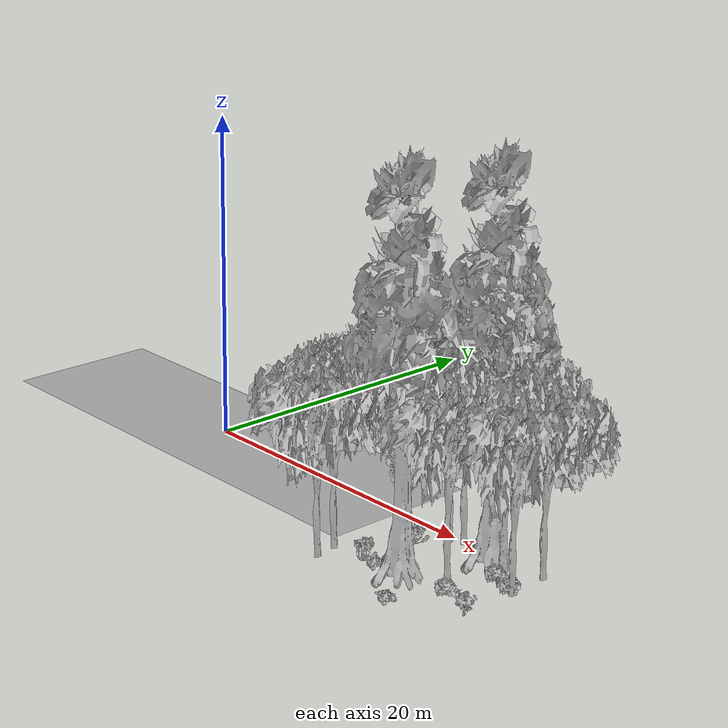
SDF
<sdf version="1.7">
 <world name="default">
  <model name="ground_plane">
   <static>1</static>
   <link name="link">
    <collision name="collision">
     <geometry><plane><normal>0 0 1</normal><size>100 100</size></plane></geometry>
     <surface><contact><ode><min_depth>0.01</min_depth><max_vel>0</max_vel></ode></contact></surface>
    </collision>
    <visual name="grass">
     <cast_shadows>0</cast_shadows>
     <geometry>
      <mesh>
       <scale>0.5814285714285714 0.18142857142857144 0.1</scale>
       <uri>file://grass_plane/meshes/grass_plane.dae</uri>
      </mesh>
     </geometry>
    </visual>
   </link>
  </model>
  <model name="Tree 87">
   <static>1</static>
   <pose>24.762154021888563 -1.2815338212791954 0 1.57079 -0 0</pose>
   <link name="link">
    <collision name="collision">
     <geometry><mesh><scale>3.5 5 3.5</scale><uri>model://tree_9/meshes/tree_9.obj</uri></mesh></geometry>
    </collision>
    <visual name="visual">
     <geometry><mesh><scale>3.5 5 3.5</scale><uri>model://tree_9/meshes/tree_9.obj</uri></mesh></geometry>
    </visual>
   </link>
  </model>
  <model name="Tree 126">
   <static>1</static>
   <pose>20.700435597103834 -0.1439220012419291 0 1.57079 -0 0</pose>
   <link name="link">
    <collision name="collision">
     <geometry><mesh><scale>3.5 5 3.5</scale><uri>model://tree_2/meshes/tree_2.obj</uri></mesh></geometry>
    </collision>
    <visual name="visual">
     <geometry><mesh><scale>3.5 5 3.5</scale><uri>model://tree_2/meshes/tree_2.obj</uri></mesh></geometry>
    </visual>
   </link>
  </model>
  <model name="Tree 139">
   <static>1</static>
   <pose>16.22907979295354 0.05030989968264343 0 1.57079 -0 0</pose>
   <link name="link">
    <collision name="collision">
     <geometry><mesh><scale>3.5 5 3.5</scale><uri>model://tree_9/meshes/tree_9.obj</uri></mesh></geometry>
    </collision>
    <visual name="visual">
     <geometry><mesh><scale>3.5 5 3.5</scale><uri>model://tree_9/meshes/tree_9.obj</uri></mesh></geometry>
    </visual>
   </link>
  </model>
  <model name="Tree 227">
   <static>1</static>
   <pose>17.304511364682412 -1.1993700250902233 0 1.57079 -0 0</pose>
   <link name="link">
    <collision name="collision">
     <geometry><mesh><scale>3.5 5 3.5</scale><uri>model://tree_2/meshes/tree_2.obj</uri></mesh></geometry>
    </collision>
    <visual name="visual">
     <geometry><mesh><scale>3.5 5 3.5</scale><uri>model://tree_2/meshes/tree_2.obj</uri></mesh></geometry>
    </visual>
   </link>
  </model>
  <model name="Tree 241">
   <static>1</static>
   <pose>16.709409075168722 -7.158673425214763 0 1.57079 -0 0</pose>
   <link name="link">
    <collision name="collision">
     <geometry><mesh><scale>3.5 5 3.5</scale><uri>model://tree_2/meshes/tree_2.obj</uri></mesh></geometry>
    </collision>
    <visual name="visual">
     <geometry><mesh><scale>3.5 5 3.5</scale><uri>model://tree_2/meshes/tree_2.obj</uri></mesh></geometry>
    </visual>
   </link>
  </model>
  <model name="Tree 267">
   <static>1</static>
   <pose>19.98978772129469 -0.5024682242582674 0 1.57079 -0 0</pose>
   <link name="link">
    <collision name="collision">
     <geometry><mesh><scale>3.5 5 3.5</scale><uri>model://tree_2/meshes/tree_2.obj</uri></mesh></geometry>
    </collision>
    <visual name="visual">
     <geometry><mesh><scale>3.5 5 3.5</scale><uri>model://tree_2/meshes/tree_2.obj</uri></mesh></geometry>
    </visual>
   </link>
  </model>
  <model name="Tree 270">
   <static>1</static>
   <pose>22.905177964467484 -3.6206345914285656 0 1.57079 -0 0</pose>
   <link name="link">
    <collision name="collision">
     <geometry><mesh><scale>3.5 5 3.5</scale><uri>model://tree_2/meshes/tree_2.obj</uri></mesh></geometry>
    </collision>
    <visual name="visual">
     <geometry><mesh><scale>3.5 5 3.5</scale><uri>model://tree_2/meshes/tree_2.obj</uri></mesh></geometry>
    </visual>
   </link>
  </model>
  <model name="Tree 283">
   <static>1</static>
   <pose>26.292993573531234 0.004703976021030343 0 1.57079 -0 0</pose>
   <link name="link">
    <collision name="collision">
     <geometry><mesh><scale>3.5 5 3.5</scale><uri>model://tree_2/meshes/tree_2.obj</uri></mesh></geometry>
    </collision>
    <visual name="visual">
     <geometry><mesh><scale>3.5 5 3.5</scale><uri>model://tree_2/meshes/tree_2.obj</uri></mesh></geometry>
    </visual>
   </link>
  </model>
  <model name="Tree 287">
   <static>1</static>
   <pose>20.353614105269273 -3.999209464108187 0 1.57079 -0 0</pose>
   <link name="link">
    <collision name="collision">
     <geometry><mesh><scale>3.5 5 3.5</scale><uri>model://tree_9/meshes/tree_9.obj</uri></mesh></geometry>
    </collision>
    <visual name="visual">
     <geometry><mesh><scale>3.5 5 3.5</scale><uri>model://tree_9/meshes/tree_9.obj</uri></mesh></geometry>
    </visual>
   </link>
  </model>
  <model name="Tree 326">
   <static>1</static>
   <pose>16.49464261642116 -5.78826860011635 0 1.57079 -0 0</pose>
   <link name="link">
    <collision name="collision">
     <geometry><mesh><scale>3.5 5 3.5</scale><uri>model://tree_2/meshes/tree_2.obj</uri></mesh></geometry>
    </collision>
    <visual name="visual">
     <geometry><mesh><scale>3.5 5 3.5</scale><uri>model://tree_2/meshes/tree_2.obj</uri></mesh></geometry>
    </visual>
   </link>
  </model>
  <model name="Tree 369">
   <static>1</static>
   <pose>26.49497232388832 -2.5422927113789626 0 1.57079 -0 0</pose>
   <link name="link">
    <collision name="collision">
     <geometry><mesh><scale>3.5 5 3.5</scale><uri>model://tree_2/meshes/tree_2.obj</uri></mesh></geometry>
    </collision>
    <visual name="visual">
     <geometry><mesh><scale>3.5 5 3.5</scale><uri>model://tree_2/meshes/tree_2.obj</uri></mesh></geometry>
    </visual>
   </link>
  </model>
  <model name="Tree 406">
   <static>1</static>
   <pose>22.950861630937567 -0.4093544376797347 0 1.57079 -0 0</pose>
   <link name="link">
    <collision name="collision">
     <geometry><mesh><scale>3.5 5 3.5</scale><uri>model://tree_4/meshes/tree_4.obj</uri></mesh></geometry>
    </collision>
    <visual name="visual">
     <geometry><mesh><scale>3.5 5 3.5</scale><uri>model://tree_4/meshes/tree_4.obj</uri></mesh></geometry>
    </visual>
   </link>
  </model>
  <model name="Tree 408">
   <static>1</static>
   <pose>21.020127219537628 -5.124874950841816 0 1.57079 -0 0</pose>
   <link name="link">
    <collision name="collision">
     <geometry><mesh><scale>3.5 5 3.5</scale><uri>model://tree_4/meshes/tree_4.obj</uri></mesh></geometry>
    </collision>
    <visual name="visual">
     <geometry><mesh><scale>3.5 5 3.5</scale><uri>model://tree_4/meshes/tree_4.obj</uri></mesh></geometry>
    </visual>
   </link>
  </model>
  <model name="Tree 426">
   <static>1</static>
   <pose>19.894328478652454 -3.5053651301089346 0 1.57079 -0 0</pose>
   <link name="link">
    <collision name="collision">
     <geometry><mesh><scale>3.5 5 3.5</scale><uri>model://tree_9/meshes/tree_9.obj</uri></mesh></geometry>
    </collision>
    <visual name="visual">
     <geometry><mesh><scale>3.5 5 3.5</scale><uri>model://tree_9/meshes/tree_9.obj</uri></mesh></geometry>
    </visual>
   </link>
  </model>
  <model name="Bush 98">
   <static>1</static>
   <pose>18.70496276636439 -5.652036041488355 0 1.57079 -0 0</pose>
   <link name="link">
    <collision name="collision">
     <geometry><mesh><scale>2 2 2</scale><uri>model://bush_4/meshes/bush_4.obj</uri></mesh></geometry>
     <surface><contact><collide_without_contact>false</collide_without_contact></contact></surface>
    </collision>
    <visual name="visual">
     <geometry><mesh><scale>2 2 2</scale><uri>model://bush_4/meshes/bush_4.obj</uri></mesh></geometry>
    </visual>
   </link>
  </model>
  <model name="Bush 123">
   <static>1</static>
   <pose>24.404495791398233 -5.035854212484704 0 1.57079 -0 0</pose>
   <link name="link">
    <collision name="collision">
     <geometry><mesh><scale>2 2 2</scale><uri>model://bush_3/meshes/bush_3.obj</uri></mesh></geometry>
     <surface><contact><collide_without_contact>false</collide_without_contact></contact></surface>
    </collision>
    <visual name="visual">
     <geometry><mesh><scale>2 2 2</scale><uri>model://bush_3/meshes/bush_3.obj</uri></mesh></geometry>
    </visual>
   </link>
  </model>
  <model name="Bush 150">
   <static>1</static>
   <pose>19.044306163406077 -2.1426976708336554 0 1.57079 -0 0</pose>
   <link name="link">
    <collision name="collision">
     <geometry><mesh><scale>2 2 2</scale><uri>model://bush_4/meshes/bush_4.obj</uri></mesh></geometry>
     <surface><contact><collide_without_contact>false</collide_without_contact></contact></surface>
    </collision>
    <visual name="visual">
     <geometry><mesh><scale>2 2 2</scale><uri>model://bush_4/meshes/bush_4.obj</uri></mesh></geometry>
    </visual>
   </link>
  </model>
  <model name="Bush 163">
   <static>1</static>
   <pose>24.99394296421498 -1.9985127853200666 0 1.57079 -0 0</pose>
   <link name="link">
    <collision name="collision">
     <geometry><mesh><scale>2 2 2</scale><uri>model://bush_3/meshes/bush_3.obj</uri></mesh></geometry>
     <surface><contact><collide_without_contact>false</collide_without_contact></contact></surface>
    </collision>
    <visual name="visual">
     <geometry><mesh><scale>2 2 2</scale><uri>model://bush_3/meshes/bush_3.obj</uri></mesh></geometry>
    </visual>
   </link>
  </model>
  <model name="Bush 245">
   <static>1</static>
   <pose>26.542227132516587 -5.940241268050533 0 1.57079 -0 0</pose>
   <link name="link">
    <collision name="collision">
     <geometry><mesh><scale>2 2 2</scale><uri>model://bush_0/meshes/bush_0.obj</uri></mesh></geometry>
     <surface><contact><collide_without_contact>false</collide_without_contact></contact></surface>
    </collision>
    <visual name="visual">
     <geometry><mesh><scale>2 2 2</scale><uri>model://bush_0/meshes/bush_0.obj</uri></mesh></geometry>
    </visual>
   </link>
  </model>
  <model name="Bush 258">
   <static>1</static>
   <pose>19.413789865439412 -5.472576027237732 0 1.57079 -0 0</pose>
   <link name="link">
    <collision name="collision">
     <geometry><mesh><scale>2 2 2</scale><uri>model://bush_2/meshes/bush_2.obj</uri></mesh></geometry>
     <surface><contact><collide_without_contact>false</collide_without_contact></contact></surface>
    </collision>
    <visual name="visual">
     <geometry><mesh><scale>2 2 2</scale><uri>model://bush_2/meshes/bush_2.obj</uri></mesh></geometry>
    </visual>
   </link>
  </model>
  <model name="Bush 308">
   <static>1</static>
   <pose>26.404368726818106 -2.368970357327596 0 1.57079 -0 0</pose>
   <link name="link">
    <collision name="collision">
     <geometry><mesh><scale>2 2 2</scale><uri>model://bush_3/meshes/bush_3.obj</uri></mesh></geometry>
     <surface><contact><collide_without_contact>false</collide_without_contact></contact></surface>
    </collision>
    <visual name="visual">
     <geometry><mesh><scale>2 2 2</scale><uri>model://bush_3/meshes/bush_3.obj</uri></mesh></geometry>
    </visual>
   </link>
  </model>
  <model name="Bush 316">
   <static>1</static>
   <pose>22.653730205993014 -7.687736019627498 0 1.57079 -0 0</pose>
   <link name="link">
    <collision name="collision">
     <geometry><mesh><scale>2 2 2</scale><uri>model://bush_2/meshes/bush_2.obj</uri></mesh></geometry>
     <surface><contact><collide_without_contact>false</collide_without_contact></contact></surface>
    </collision>
    <visual name="visual">
     <geometry><mesh><scale>2 2 2</scale><uri>model://bush_2/meshes/bush_2.obj</uri></mesh></geometry>
    </visual>
   </link>
  </model>
 </world>
</sdf>
